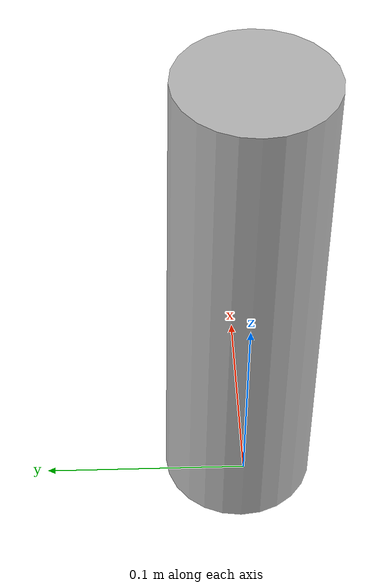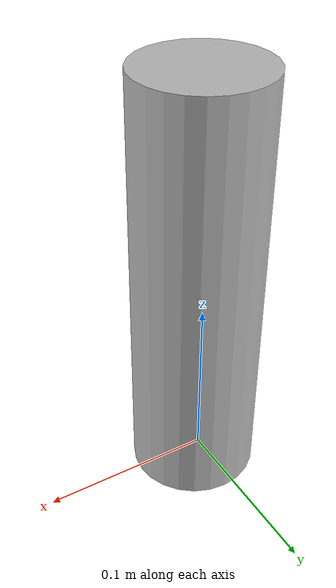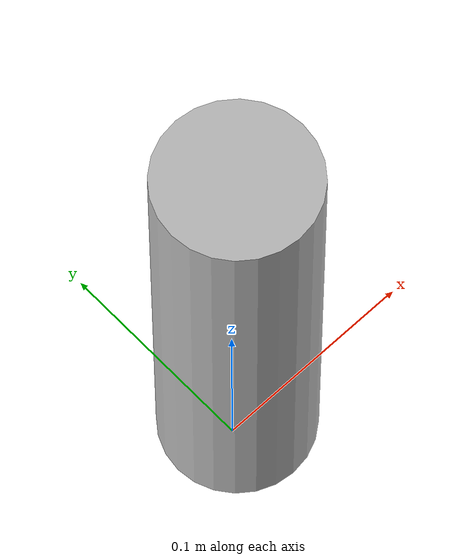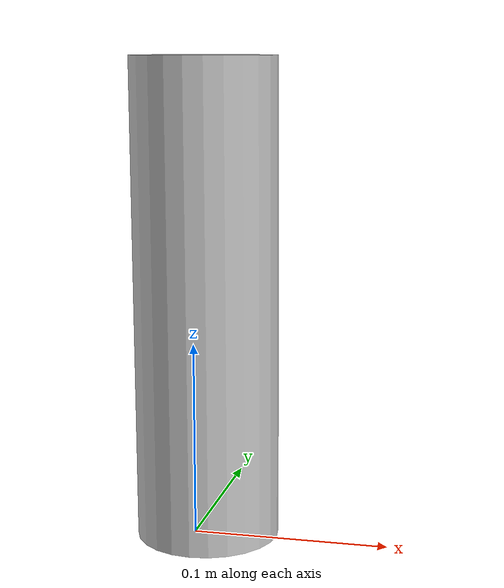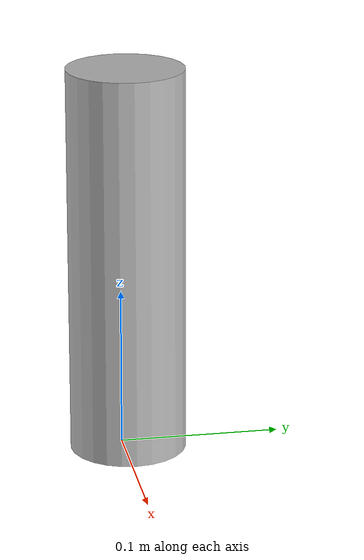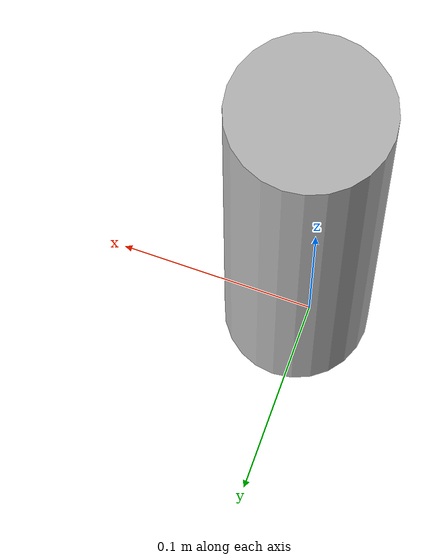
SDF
<sdf version='1.6'>
  <model name='cylinder'>
    <link name='main_body'>
      <pose frame=''>0 0 0 0 0 0</pose>
      <inertial>
        <pose frame=''>0.0 0 0.0 0 -0 0</pose>
        <mass>0.2</mass>
        <inertia>
          <ixx>2.559253e-05</ixx>
          <ixy>-2.405487e-09</ixy>
          <ixz>-2.116828e-07</ixz>
          <iyy>2.560070e-05</iyy>
          <iyz>-1.954458e-08</iyz>
          <izz>3.267353e-06</izz>
        </inertia>
      </inertial>
      <collision name='main_body_collision'>
        <pose frame=''>0.006 0.003 0.122 0 -0 0</pose>
        <geometry>
          <cylinder>
            <length>0.244</length>
            <radius>0.0365</radius>
          </cylinder>
        </geometry>
        <surface>
          <friction>
            <ode>
              <mu>0.9</mu>
              <mu2>0.5</mu2>
            </ode>
          </friction>
        </surface>
      </collision>

      <visual name='main_body_visual'>
        <pose frame=''>0.006 0.003 0.122 0 -0 0</pose>
        <geometry>
          <cylinder>
            <length>0.244</length>
            <radius>0.0365</radius>
          </cylinder>
        </geometry>
      </visual>
    </link>
  </model>
</sdf>
